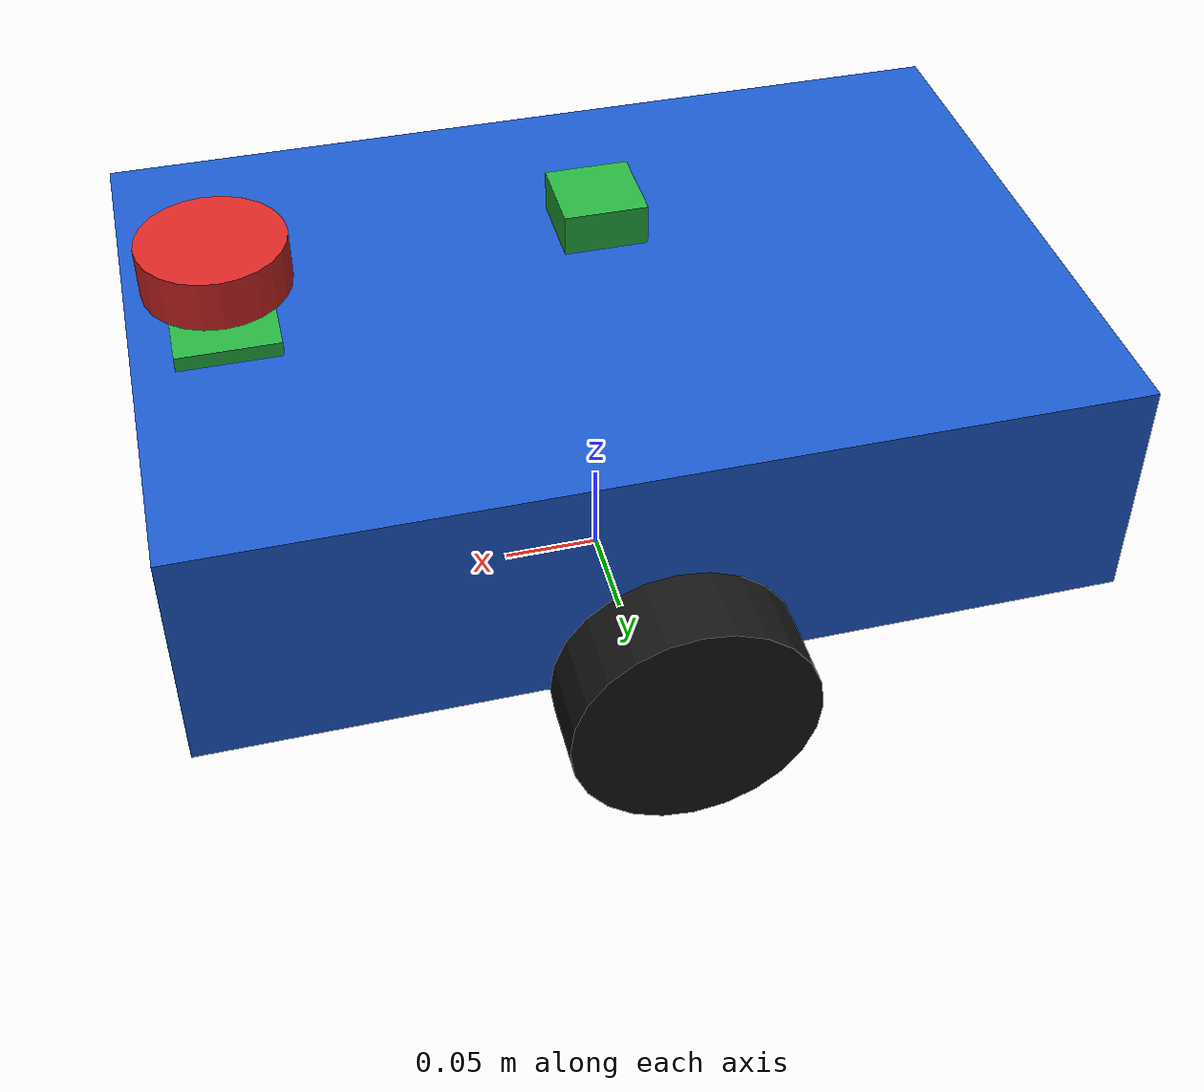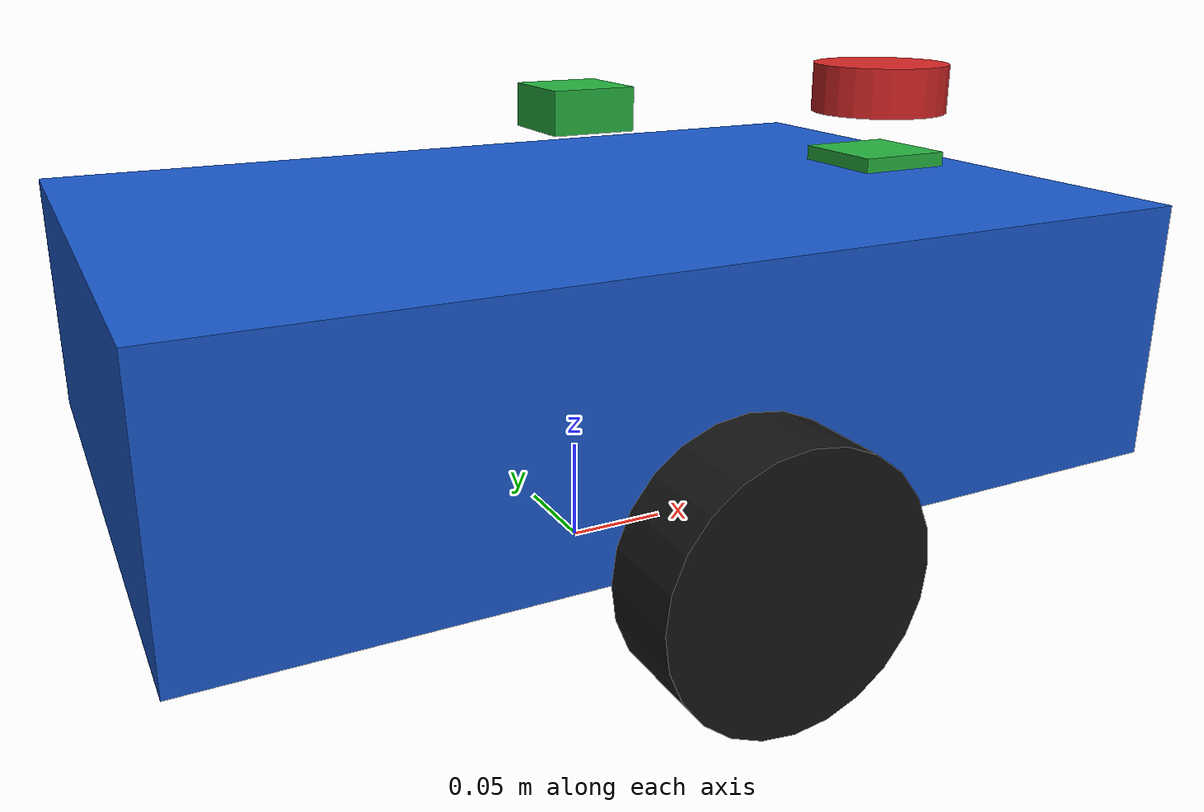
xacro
<?xml version="1.0"?>
<!--
  Robot diferencial mínimo para la Guía ROS 2 Parte 3.
  Los valores se declaran al inicio para que un estudiante pueda ajustarlos
  sin buscar medidas repetidas por todo el archivo.
-->
<robot name="simple_diff_robot" xmlns:xacro="http://www.ros.org/wiki/xacro">

  <!-- Macros físicas y sensores separados para facilitar su reutilización. -->
  <xacro:include filename="$(find robotica_part3)/description/inertials.xacro"/>
  <xacro:include filename="$(find robotica_part3)/description/sensors.xacro"/>

  <!-- Medidas en metros y masas en kilogramos. -->
  <xacro:property name="base_length" value="0.45"/>
  <xacro:property name="base_width" value="0.30"/>
  <xacro:property name="base_height" value="0.12"/>
  <xacro:property name="wheel_radius" value="0.06"/>
  <xacro:property name="wheel_width" value="0.04"/>
  <xacro:property name="wheel_separation" value="0.34"/>

  <material name="blue">
    <color rgba="0.10 0.35 0.80 1.0"/>
  </material>
  <material name="black">
    <color rgba="0.08 0.08 0.08 1.0"/>
  </material>
  <material name="gray">
    <color rgba="0.45 0.45 0.45 1.0"/>
  </material>

  <!-- Marco que tocará el suelo cuando el robot se simule. -->
  <link name="base_footprint"/>

  <!-- Cuerpo principal del robot. -->
  <link name="base_link">
    <visual>
      <geometry>
        <box size="${base_length} ${base_width} ${base_height}"/>
      </geometry>
      <material name="blue"/>
    </visual>
    <collision>
      <geometry>
        <box size="${base_length} ${base_width} ${base_height}"/>
      </geometry>
    </collision>
    <xacro:box_inertial mass="2.0"
      x="${base_length}" y="${base_width}" z="${base_height}"/>
  </link>

  <joint name="base_footprint_to_base_link" type="fixed">
    <parent link="base_footprint"/>
    <child link="base_link"/>
    <origin xyz="0 0 0.12" rpy="0 0 0"/>
  </joint>

  <!-- Macro: evita copiar y pegar la definición de las dos ruedas. -->
  <xacro:macro name="wheel" params="side y_position">
    <link name="${side}_wheel_link">
      <visual>
        <!-- El cilindro se rota para que su eje quede sobre Y. -->
        <origin xyz="0 0 0" rpy="1.5708 0 0"/>
        <geometry>
          <cylinder radius="${wheel_radius}" length="${wheel_width}"/>
        </geometry>
        <material name="black"/>
      </visual>
      <collision>
        <origin xyz="0 0 0" rpy="1.5708 0 0"/>
        <geometry>
          <cylinder radius="${wheel_radius}" length="${wheel_width}"/>
        </geometry>
      </collision>
      <xacro:cylinder_inertial mass="0.15"
        radius="${wheel_radius}" length="${wheel_width}"
        rpy="1.5708 0 0"/>
    </link>

    <joint name="${side}_wheel_joint" type="continuous">
      <parent link="base_link"/>
      <child link="${side}_wheel_link"/>
      <origin xyz="0 ${y_position} -0.06" rpy="0 0 0"/>
      <axis xyz="0 1 0"/>
    </joint>
  </xacro:macro>

  <xacro:wheel side="left" y_position="${wheel_separation / 2}"/>
  <xacro:wheel side="right" y_position="${-wheel_separation / 2}"/>

  <!-- Rueda loca trasera: da un tercer punto de apoyo al robot. -->
  <link name="caster_link">
    <visual>
      <geometry>
        <sphere radius="0.03"/>
      </geometry>
      <material name="gray"/>
    </visual>
    <collision>
      <geometry>
        <sphere radius="0.03"/>
      </geometry>
    </collision>
    <xacro:sphere_inertial mass="0.05" radius="0.03"/>
  </link>

  <joint name="caster_joint" type="fixed">
    <parent link="base_link"/>
    <child link="caster_link"/>
    <origin xyz="-0.16 0 -0.10" rpy="0 0 0"/>
  </joint>

  <!-- Incluye los frames, geometría y física básica de IMU, LiDAR y cámara. -->
  <xacro:simple_diff_sensors/>

</robot>

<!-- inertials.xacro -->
<!-- Macros de inercia solicitadas en la Actividad 5. -->
<robot xmlns:xacro="http://www.ros.org/wiki/xacro">

  <!-- Prisma rectangular: x, y y z son sus dimensiones completas. -->
  <xacro:macro name="box_inertial" params="mass x y z">
    <inertial>
      <mass value="${mass}"/>
      <origin xyz="0 0 0" rpy="0 0 0"/>
      <inertia
        ixx="${mass * (y*y + z*z) / 12.0}" ixy="0" ixz="0"
        iyy="${mass * (x*x + z*z) / 12.0}" iyz="0"
        izz="${mass * (x*x + y*y) / 12.0}"/>
    </inertial>
  </xacro:macro>

  <!-- Cilindro macizo. rpy orienta su eje principal cuando es necesario. -->
  <xacro:macro name="cylinder_inertial" params="mass radius length rpy">
    <inertial>
      <mass value="${mass}"/>
      <origin xyz="0 0 0" rpy="${rpy}"/>
      <inertia
        ixx="${mass * (3*radius*radius + length*length) / 12.0}" ixy="0" ixz="0"
        iyy="${mass * (3*radius*radius + length*length) / 12.0}" iyz="0"
        izz="${mass * radius*radius / 2.0}"/>
    </inertial>
  </xacro:macro>

  <!-- Esfera maciza: los tres momentos principales son iguales. -->
  <xacro:macro name="sphere_inertial" params="mass radius">
    <inertial>
      <mass value="${mass}"/>
      <origin xyz="0 0 0" rpy="0 0 0"/>
      <inertia
        ixx="${2.0 * mass * radius*radius / 5.0}" ixy="0" ixz="0"
        iyy="${2.0 * mass * radius*radius / 5.0}" iyz="0"
        izz="${2.0 * mass * radius*radius / 5.0}"/>
    </inertial>
  </xacro:macro>

</robot>

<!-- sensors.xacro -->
<!-- Sensores separados para que su integración sea fácil de leer y reutilizar. -->
<robot xmlns:xacro="http://www.ros.org/wiki/xacro">

  <xacro:macro name="simple_diff_sensors" params="">
    <material name="sensor_red">
      <color rgba="0.85 0.15 0.15 1.0"/>
    </material>
    <material name="sensor_green">
      <color rgba="0.15 0.70 0.25 1.0"/>
    </material>

    <!-- LiDAR frontal: el plugin y los datos de rango se definen en Gazebo. -->
    <link name="laser_frame">
      <visual>
        <geometry><cylinder radius="0.035" length="0.025"/></geometry>
        <material name="sensor_red"/>
      </visual>
      <collision><geometry><cylinder radius="0.035" length="0.025"/></geometry></collision>
      <xacro:cylinder_inertial mass="0.03" radius="0.035"
        length="0.025" rpy="0 0 0"/>
    </link>
    <joint name="laser_joint" type="fixed">
      <parent link="base_link"/>
      <child link="laser_frame"/>
      <origin xyz="0.18 0 0.10" rpy="0 0 0"/>
    </joint>

    <!-- IMU: marco central que mide aceleración y orientación en simulación. -->
    <link name="imu_link">
      <visual>
        <geometry><box size="0.04 0.04 0.02"/></geometry>
        <material name="sensor_green"/>
      </visual>
      <collision><geometry><box size="0.04 0.04 0.02"/></geometry></collision>
      <xacro:box_inertial mass="0.02" x="0.04" y="0.04" z="0.02"/>
    </link>
    <joint name="imu_joint" type="fixed">
      <parent link="base_link"/>
      <child link="imu_link"/>
      <origin xyz="0 0 0.10" rpy="0 0 0"/>
    </joint>

    <!-- Cámara frontal: frame y carcasa; Gazebo publica la imagen. -->
    <link name="camera_link">
      <visual>
        <geometry><box size="0.05 0.05 0.035"/></geometry>
        <material name="sensor_green"/>
      </visual>
      <collision><geometry><box size="0.05 0.05 0.035"/></geometry></collision>
      <xacro:box_inertial mass="0.03" x="0.05" y="0.05" z="0.035"/>
    </link>
    <joint name="camera_joint" type="fixed">
      <parent link="base_link"/>
      <child link="camera_link"/>
      <origin xyz="0.18 0 0.05" rpy="0 0 0"/>
    </joint>
  </xacro:macro>
</robot>
